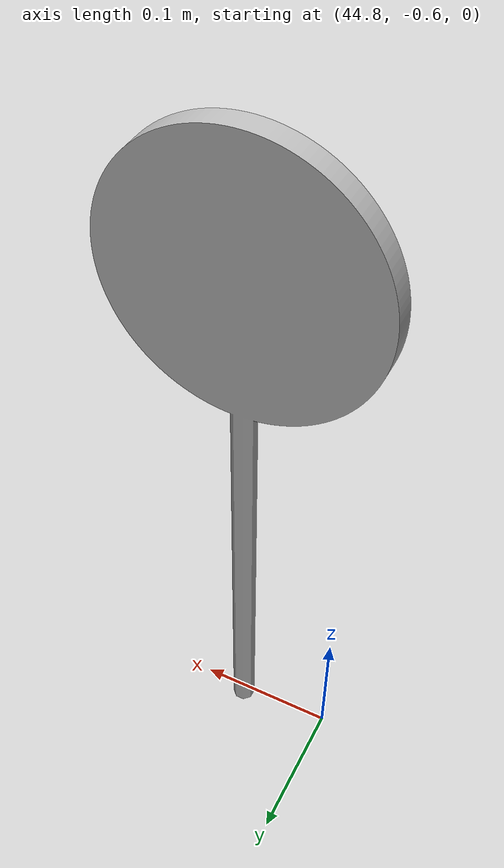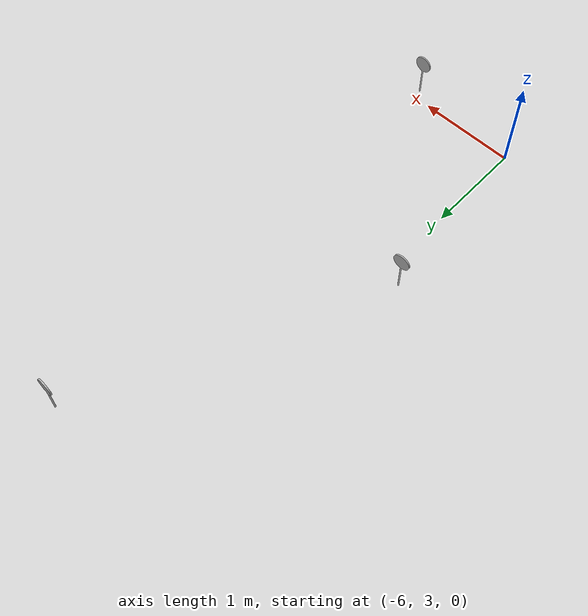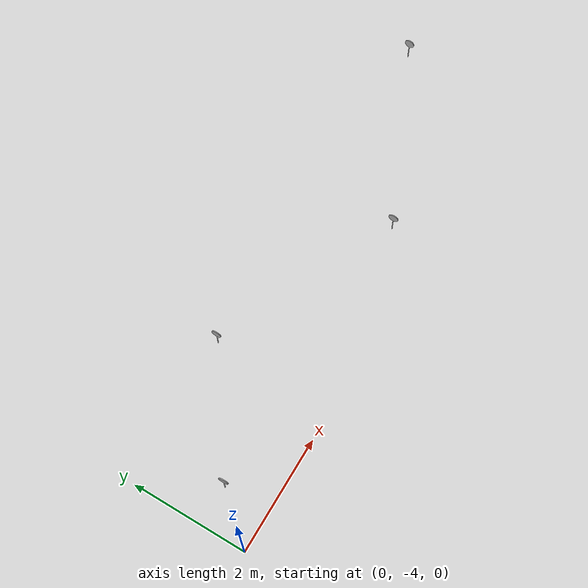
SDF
<sdf version="1.6">
 <world name="default">
  <light name="sun" type="directional">
   <pose>0 0 10 0 -0 0</pose>
   <diffuse>0.8 0.8 0.8 1</diffuse>
   <specular>0.2 0.2 0.2 1</specular>
   <attenuation>
    <range>1000</range>
    <constant>0.9</constant>
    <linear>0.01</linear>
    <quadratic>0.001</quadratic>
   </attenuation>
   <direction>-0.5 0.1 -0.9</direction>
  </light>
  <model name="my_ground_plane">
   <static>1</static>
   <link name="link">
    <collision name="collision">
     <geometry><plane><normal>0 0 1</normal><size>100 100</size></plane></geometry>
     <surface><friction><ode><mu>100</mu><mu2>50</mu2></ode></friction></surface>
    </collision>
    <visual name="visual">
     <cast_shadows>0</cast_shadows>
     <geometry><plane><normal>0 0 1</normal><size>100 100</size></plane></geometry>
     <material>
      <script>
       <uri>model://my_ground_plane/materials/scripts</uri>
       <uri>model://my_ground_plane/materials/textures/</uri>
       <name>MyGroundPlane/Ground</name>
      </script>
     </material>
    </visual>
   </link>
  </model>
  <gravity>0 0 -9.8</gravity>
  <magnetic_field>6e-06 2.3e-05 -4.2e-05</magnetic_field>
  <atmosphere type="adiabatic"/>
  <physics name="default_physics" default="0" type="ode">
   <max_step_size>0.001</max_step_size>
   <real_time_factor>1</real_time_factor>
   <real_time_update_rate>1000</real_time_update_rate>
  </physics>
  <scene><ambient>0.4 0.4 0.4 1</ambient><background>0.7 0.7 0.7 1</background><shadows>1</shadows></scene>
  <audio><device>default</device></audio>
  <spherical_coordinates>
   <surface_model>EARTH_WGS84</surface_model>
   <latitude_deg>0</latitude_deg>
   <longitude_deg>0</longitude_deg>
   <elevation>0</elevation>
   <heading_deg>0</heading_deg>
  </spherical_coordinates>
  <model name="left_arrow">
   <pose>0.690107 -3.21764 0.4 1.5708 4e-06 -1.54391</pose>
   <static>1</static>
   <link name="link">
    <inertial>
     <mass>1</mass>
     <inertia><ixx>0.083</ixx><ixy>0</ixy><ixz>0</ixz><iyy>0.083</iyy><iyz>0</iyz><izz>0.083</izz></inertia>
    </inertial>
    <collision name="collision">
     <geometry>
      <mesh><uri>model://left_arrow/meshes/sign.dae</uri><scale>0.005 0.005 0.005</scale></mesh>
     </geometry>
    </collision>
    <visual name="visual">
     <geometry>
      <mesh><uri>model://left_arrow/meshes/sign.dae</uri><scale>0.005 0.005 0.005</scale></mesh>
     </geometry>
     <material>
      <script>
       <uri>model://left_arrow/materials/scripts</uri>
       <uri>model://left_arrow/materials/textures</uri>
       <name>left_arrow_mat</name>
      </script>
     </material>
    </visual>
   </link>
  </model>
  <model name="right_arrow">
   <pose>28.2949 -12.2665 0.400006 1.5708 4e-06 -1.58024</pose>
   <static>1</static>
   <link name="link">
    <inertial>
     <mass>1</mass>
     <inertia><ixx>0.083</ixx><ixy>0</ixy><ixz>0</ixz><iyy>0.083</iyy><iyz>0</iyz><izz>0.083</izz></inertia>
    </inertial>
    <collision name="collision">
     <geometry>
      <mesh><uri>model://right_arrow/meshes/sign.dae</uri><scale>-0.005 0.005 0.005</scale></mesh>
     </geometry>
    </collision>
    <visual name="visual">
     <geometry>
      <mesh><uri>model://right_arrow/meshes/sign.dae</uri><scale>-0.005 0.005 0.005</scale></mesh>
     </geometry>
     <material>
      <script>
       <uri>model://right_arrow/materials/scripts</uri>
       <uri>model://right_arrow/materials/textures</uri>
       <name>left_arrow_mat</name>
      </script>
     </material>
    </visual>
   </link>
  </model>
  <model name="up_arrow">
   <pose>5.86114 -3.27786 0.4 1.5708 4e-06 -1.56312</pose>
   <static>1</static>
   <link name="link">
    <inertial>
     <mass>1</mass>
     <inertia><ixx>0.083</ixx><ixy>0</ixy><ixz>0</ixz><iyy>0.083</iyy><iyz>0</iyz><izz>0.083</izz></inertia>
    </inertial>
    <collision name="collision">
     <geometry><mesh><uri>model://up_arrow/meshes/sign.dae</uri><scale>-0.005 0.005 0.005</scale></mesh></geometry>
    </collision>
    <visual name="visual">
     <geometry><mesh><uri>model://up_arrow/meshes/sign.dae</uri><scale>-0.005 0.005 0.005</scale></mesh></geometry>
     <material>
      <script>
       <uri>model://up_arrow/materials/scripts</uri>
       <uri>model://up_arrow/materials/textures</uri>
       <name>up_arrow_mat</name>
      </script>
     </material>
    </visual>
   </link>
  </model>
  <model name="right_arrow_0">
   <pose>8.33799 12.8618 0.4 1.5708 -4e-06 1.56153</pose>
   <static>1</static>
   <link name="link">
    <inertial>
     <mass>1</mass>
     <inertia><ixx>0.083</ixx><ixy>0</ixy><ixz>0</ixz><iyy>0.083</iyy><iyz>0</iyz><izz>0.083</izz></inertia>
    </inertial>
    <collision name="collision">
     <geometry>
      <mesh><uri>model://right_arrow/meshes/sign.dae</uri><scale>-0.005 0.005 0.005</scale></mesh>
     </geometry>
    </collision>
    <visual name="visual">
     <geometry>
      <mesh><uri>model://right_arrow/meshes/sign.dae</uri><scale>-0.005 0.005 0.005</scale></mesh>
     </geometry>
     <material>
      <script>
       <uri>model://right_arrow/materials/scripts</uri>
       <uri>model://right_arrow/materials/textures</uri>
       <name>left_arrow_mat</name>
      </script>
     </material>
    </visual>
   </link>
  </model>
  <model name="left_arrow_0">
   <pose>1.15826 12.8557 0.4 1.5708 -4e-06 1.53834</pose>
   <static>1</static>
   <link name="link">
    <inertial>
     <mass>1</mass>
     <inertia><ixx>0.083</ixx><ixy>0</ixy><ixz>0</ixz><iyy>0.083</iyy><iyz>0</iyz><izz>0.083</izz></inertia>
    </inertial>
    <collision name="collision">
     <geometry>
      <mesh><uri>model://left_arrow/meshes/sign.dae</uri><scale>0.005 0.005 0.005</scale></mesh>
     </geometry>
    </collision>
    <visual name="visual">
     <geometry>
      <mesh><uri>model://left_arrow/meshes/sign.dae</uri><scale>0.005 0.005 0.005</scale></mesh>
     </geometry>
     <material>
      <script>
       <uri>model://left_arrow/materials/scripts</uri>
       <uri>model://left_arrow/materials/textures</uri>
       <name>left_arrow_mat</name>
      </script>
     </material>
    </visual>
   </link>
  </model>
  <model name="up_arrow_0">
   <pose>-6.18288 4.83953 0.4 1.57079 -0 -3.12906</pose>
   <static>1</static>
   <link name="link">
    <inertial>
     <mass>1</mass>
     <inertia><ixx>0.083</ixx><ixy>0</ixy><ixz>0</ixz><iyy>0.083</iyy><iyz>0</iyz><izz>0.083</izz></inertia>
    </inertial>
    <collision name="collision">
     <geometry><mesh><uri>model://up_arrow/meshes/sign.dae</uri><scale>-0.005 0.005 0.005</scale></mesh></geometry>
    </collision>
    <visual name="visual">
     <geometry><mesh><uri>model://up_arrow/meshes/sign.dae</uri><scale>-0.005 0.005 0.005</scale></mesh></geometry>
     <material>
      <script>
       <uri>model://up_arrow/materials/scripts</uri>
       <uri>model://up_arrow/materials/textures</uri>
       <name>up_arrow_mat</name>
      </script>
     </material>
    </visual>
   </link>
  </model>
  <model name="right_arrow_0_clone">
   <pose>34.8683 12.7812 0.399972 1.5708 -4e-06 1.56153</pose>
   <static>1</static>
   <link name="link">
    <inertial>
     <mass>1</mass>
     <inertia><ixx>0.083</ixx><ixy>0</ixy><ixz>0</ixz><iyy>0.083</iyy><iyz>0</iyz><izz>0.083</izz></inertia>
    </inertial>
    <collision name="collision">
     <geometry>
      <mesh><uri>model://right_arrow/meshes/sign.dae</uri><scale>-0.005 0.005 0.005</scale></mesh>
     </geometry>
    </collision>
    <visual name="visual">
     <geometry>
      <mesh><uri>model://right_arrow/meshes/sign.dae</uri><scale>-0.005 0.005 0.005</scale></mesh>
     </geometry>
     <material>
      <script>
       <uri>model://right_arrow/materials/scripts</uri>
       <uri>model://right_arrow/materials/textures</uri>
       <name>left_arrow_mat</name>
      </script>
     </material>
    </visual>
   </link>
  </model>
  <model name="left_arrow_0_clone">
   <pose>40.1575 14.1595 0.4 1.5708 -4e-06 1.53834</pose>
   <static>1</static>
   <link name="link">
    <inertial>
     <mass>1</mass>
     <inertia><ixx>0.083</ixx><ixy>0</ixy><ixz>0</ixz><iyy>0.083</iyy><iyz>0</iyz><izz>0.083</izz></inertia>
    </inertial>
    <collision name="collision">
     <geometry>
      <mesh><uri>model://left_arrow/meshes/sign.dae</uri><scale>0.005 0.005 0.005</scale></mesh>
     </geometry>
    </collision>
    <visual name="visual">
     <geometry>
      <mesh><uri>model://left_arrow/meshes/sign.dae</uri><scale>0.005 0.005 0.005</scale></mesh>
     </geometry>
     <material>
      <script>
       <uri>model://left_arrow/materials/scripts</uri>
       <uri>model://left_arrow/materials/textures</uri>
       <name>left_arrow_mat</name>
      </script>
     </material>
    </visual>
   </link>
  </model>
  <model name="up_arrow_1">
   <pose>22.3986 14.1309 0.4 1.5708 -4e-06 1.58526</pose>
   <static>1</static>
   <link name="link">
    <inertial>
     <mass>1</mass>
     <inertia><ixx>0.083</ixx><ixy>0</ixy><ixz>0</ixz><iyy>0.083</iyy><iyz>0</iyz><izz>0.083</izz></inertia>
    </inertial>
    <collision name="collision">
     <geometry><mesh><uri>model://up_arrow/meshes/sign.dae</uri><scale>-0.005 0.005 0.005</scale></mesh></geometry>
    </collision>
    <visual name="visual">
     <geometry><mesh><uri>model://up_arrow/meshes/sign.dae</uri><scale>-0.005 0.005 0.005</scale></mesh></geometry>
     <material>
      <script>
       <uri>model://up_arrow/materials/scripts</uri>
       <uri>model://up_arrow/materials/textures</uri>
       <name>up_arrow_mat</name>
      </script>
     </material>
    </visual>
   </link>
  </model>
  <model name="right_arrow_1">
   <pose>44.8801 -7.19866 0.4 1.5708 -0 0</pose>
   <static>1</static>
   <link name="link">
    <inertial>
     <mass>1</mass>
     <inertia><ixx>0.083</ixx><ixy>0</ixy><ixz>0</ixz><iyy>0.083</iyy><iyz>0</iyz><izz>0.083</izz></inertia>
    </inertial>
    <collision name="collision">
     <geometry>
      <mesh><uri>model://right_arrow/meshes/sign.dae</uri><scale>-0.005 0.005 0.005</scale></mesh>
     </geometry>
    </collision>
    <visual name="visual">
     <geometry>
      <mesh><uri>model://right_arrow/meshes/sign.dae</uri><scale>-0.005 0.005 0.005</scale></mesh>
     </geometry>
     <material>
      <script>
       <uri>model://right_arrow/materials/scripts</uri>
       <uri>model://right_arrow/materials/textures</uri>
       <name>left_arrow_mat</name>
      </script>
     </material>
    </visual>
   </link>
  </model>
  <model name="left_arrow_1">
   <pose>46.1611 5.12155 0.4 1.5708 -0 0</pose>
   <static>1</static>
   <link name="link">
    <inertial>
     <mass>1</mass>
     <inertia><ixx>0.083</ixx><ixy>0</ixy><ixz>0</ixz><iyy>0.083</iyy><iyz>0</iyz><izz>0.083</izz></inertia>
    </inertial>
    <collision name="collision">
     <geometry>
      <mesh><uri>model://left_arrow/meshes/sign.dae</uri><scale>0.005 0.005 0.005</scale></mesh>
     </geometry>
    </collision>
    <visual name="visual">
     <geometry>
      <mesh><uri>model://left_arrow/meshes/sign.dae</uri><scale>0.005 0.005 0.005</scale></mesh>
     </geometry>
     <material>
      <script>
       <uri>model://left_arrow/materials/scripts</uri>
       <uri>model://left_arrow/materials/textures</uri>
       <name>left_arrow_mat</name>
      </script>
     </material>
    </visual>
   </link>
  </model>
  <model name="up_arrow_2">
   <pose>37.0111 -13.6622 0.4 1.5708 4e-06 -1.56784</pose>
   <static>1</static>
   <link name="link">
    <inertial>
     <mass>1</mass>
     <inertia><ixx>0.083</ixx><ixy>0</ixy><ixz>0</ixz><iyy>0.083</iyy><iyz>0</iyz><izz>0.083</izz></inertia>
    </inertial>
    <collision name="collision">
     <geometry><mesh><uri>model://up_arrow/meshes/sign.dae</uri><scale>-0.005 0.005 0.005</scale></mesh></geometry>
    </collision>
    <visual name="visual">
     <geometry><mesh><uri>model://up_arrow/meshes/sign.dae</uri><scale>-0.005 0.005 0.005</scale></mesh></geometry>
     <material>
      <script>
       <uri>model://up_arrow/materials/scripts</uri>
       <uri>model://up_arrow/materials/textures</uri>
       <name>up_arrow_mat</name>
      </script>
     </material>
    </visual>
   </link>
  </model>
  <model name="smiley">
   <pose>15.6654 5.47511 0.4 1.5708 -0 0</pose>
   <static>1</static>
   <link name="link">
    <inertial>
     <mass>1</mass>
     <inertia><ixx>0.083</ixx><ixy>0</ixy><ixz>0</ixz><iyy>0.083</iyy><iyz>0</iyz><izz>0.083</izz></inertia>
    </inertial>
    <collision name="collision">
     <geometry><mesh><uri>model://smiley/meshes/sign.dae</uri><scale>-0.005 0.005 0.005</scale></mesh></geometry>
    </collision>
    <visual name="visual">
     <geometry><mesh><uri>model://smiley/meshes/sign.dae</uri><scale>-0.005 0.005 0.005</scale></mesh></geometry>
     <material>
      <script>
       <uri>model://smiley/materials/scripts</uri>
       <uri>model://smiley/materials/textures</uri>
       <name>smiley_mat</name>
      </script>
     </material>
    </visual>
   </link>
  </model>
  <model name="smiley_0">
   <pose>17.6688 -1.1942 0.4 1.57079 -0 3.09188</pose>
   <static>1</static>
   <link name="link">
    <inertial>
     <mass>1</mass>
     <inertia><ixx>0.083</ixx><ixy>0</ixy><ixz>0</ixz><iyy>0.083</iyy><iyz>0</iyz><izz>0.083</izz></inertia>
    </inertial>
    <collision name="collision">
     <geometry><mesh><uri>model://smiley/meshes/sign.dae</uri><scale>-0.005 0.005 0.005</scale></mesh></geometry>
    </collision>
    <visual name="visual">
     <geometry><mesh><uri>model://smiley/meshes/sign.dae</uri><scale>-0.005 0.005 0.005</scale></mesh></geometry>
     <material>
      <script>
       <uri>model://smiley/materials/scripts</uri>
       <uri>model://smiley/materials/textures</uri>
       <name>smiley_mat</name>
      </script>
     </material>
    </visual>
   </link>
  </model>
  <model name="square">
   <pose>17.6612 6.69733 0.4 1.57079 -0 3.12146</pose>
   <static>1</static>
   <link name="link">
    <inertial>
     <mass>1</mass>
     <inertia><ixx>0.083</ixx><ixy>0</ixy><ixz>0</ixz><iyy>0.083</iyy><iyz>0</iyz><izz>0.083</izz></inertia>
    </inertial>
    <collision name="collision">
     <geometry><mesh><uri>model://square/meshes/sign.dae</uri><scale>-0.005 0.005 0.005</scale></mesh></geometry>
    </collision>
    <visual name="visual">
     <geometry><mesh><uri>model://square/meshes/sign.dae</uri><scale>-0.005 0.005 0.005</scale></mesh></geometry>
     <material>
      <script>
       <uri>model://square/materials/scripts</uri>
       <uri>model://square/materials/textures</uri>
       <name>square_mat</name>
      </script>
     </material>
    </visual>
   </link>
  </model>
  <model name="triangle">
   <pose>25.1903 -13.6854 0.4 1.5708 4e-06 -1.55552</pose>
   <static>1</static>
   <link name="link">
    <inertial>
     <mass>1</mass>
     <inertia><ixx>0.083</ixx><ixy>0</ixy><ixz>0</ixz><iyy>0.083</iyy><iyz>0</iyz><izz>0.083</izz></inertia>
    </inertial>
    <collision name="collision">
     <geometry><mesh><uri>model://triangle/meshes/sign.dae</uri><scale>-0.005 0.005 0.005</scale></mesh></geometry>
    </collision>
    <visual name="visual">
     <geometry><mesh><uri>model://triangle/meshes/sign.dae</uri><scale>-0.005 0.005 0.005</scale></mesh></geometry>
     <material>
      <script>
       <uri>model://triangle/materials/scripts</uri>
       <uri>model://triangle/materials/textures</uri>
       <name>triangle_mat</name>
      </script>
     </material>
    </visual>
   </link>
  </model>
  <model name="smiley_1">
   <pose>36.7777 -12.3215 0.4 1.5708 4e-06 -1.54762</pose>
   <static>1</static>
   <link name="link">
    <inertial>
     <mass>1</mass>
     <inertia><ixx>0.083</ixx><ixy>0</ixy><ixz>0</ixz><iyy>0.083</iyy><iyz>0</iyz><izz>0.083</izz></inertia>
    </inertial>
    <collision name="collision">
     <geometry><mesh><uri>model://smiley/meshes/sign.dae</uri><scale>-0.005 0.005 0.005</scale></mesh></geometry>
    </collision>
    <visual name="visual">
     <geometry><mesh><uri>model://smiley/meshes/sign.dae</uri><scale>-0.005 0.005 0.005</scale></mesh></geometry>
     <material>
      <script>
       <uri>model://smiley/materials/scripts</uri>
       <uri>model://smiley/materials/textures</uri>
       <name>smiley_mat</name>
      </script>
     </material>
    </visual>
   </link>
  </model>
  <model name="square_0">
   <pose>44.8655 -0.585028 0.4 1.5708 -0 0</pose>
   <static>1</static>
   <link name="link">
    <inertial>
     <mass>1</mass>
     <inertia><ixx>0.083</ixx><ixy>0</ixy><ixz>0</ixz><iyy>0.083</iyy><iyz>0</iyz><izz>0.083</izz></inertia>
    </inertial>
    <collision name="collision">
     <geometry><mesh><uri>model://square/meshes/sign.dae</uri><scale>-0.005 0.005 0.005</scale></mesh></geometry>
    </collision>
    <visual name="visual">
     <geometry><mesh><uri>model://square/meshes/sign.dae</uri><scale>-0.005 0.005 0.005</scale></mesh></geometry>
     <material>
      <script>
       <uri>model://square/materials/scripts</uri>
       <uri>model://square/materials/textures</uri>
       <name>square_mat</name>
      </script>
     </material>
    </visual>
   </link>
  </model>
  <model name="triangle_0">
   <pose>44.8544 5.18401 0.4 1.5708 -0 0</pose>
   <static>1</static>
   <link name="link">
    <inertial>
     <mass>1</mass>
     <inertia><ixx>0.083</ixx><ixy>0</ixy><ixz>0</ixz><iyy>0.083</iyy><iyz>0</iyz><izz>0.083</izz></inertia>
    </inertial>
    <collision name="collision">
     <geometry><mesh><uri>model://triangle/meshes/sign.dae</uri><scale>-0.005 0.005 0.005</scale></mesh></geometry>
    </collision>
    <visual name="visual">
     <geometry><mesh><uri>model://triangle/meshes/sign.dae</uri><scale>-0.005 0.005 0.005</scale></mesh></geometry>
     <material>
      <script>
       <uri>model://triangle/materials/scripts</uri>
       <uri>model://triangle/materials/textures</uri>
       <name>triangle_mat</name>
      </script>
     </material>
    </visual>
   </link>
  </model>
  <model name="smiley_2">
   <pose>32.3344 14.1713 0.4 1.5708 -4e-06 1.56569</pose>
   <static>1</static>
   <link name="link">
    <inertial>
     <mass>1</mass>
     <inertia><ixx>0.083</ixx><ixy>0</ixy><ixz>0</ixz><iyy>0.083</iyy><iyz>0</iyz><izz>0.083</izz></inertia>
    </inertial>
    <collision name="collision">
     <geometry><mesh><uri>model://smiley/meshes/sign.dae</uri><scale>-0.005 0.005 0.005</scale></mesh></geometry>
    </collision>
    <visual name="visual">
     <geometry><mesh><uri>model://smiley/meshes/sign.dae</uri><scale>-0.005 0.005 0.005</scale></mesh></geometry>
     <material>
      <script>
       <uri>model://smiley/materials/scripts</uri>
       <uri>model://smiley/materials/textures</uri>
       <name>smiley_mat</name>
      </script>
     </material>
    </visual>
   </link>
  </model>
  <model name="square_1">
   <pose>26.6206 12.8164 0.4 1.5708 -4e-06 1.55738</pose>
   <static>1</static>
   <link name="link">
    <inertial>
     <mass>1</mass>
     <inertia><ixx>0.083</ixx><ixy>0</ixy><ixz>0</ixz><iyy>0.083</iyy><iyz>0</iyz><izz>0.083</izz></inertia>
    </inertial>
    <collision name="collision">
     <geometry><mesh><uri>model://square/meshes/sign.dae</uri><scale>-0.005 0.005 0.005</scale></mesh></geometry>
    </collision>
    <visual name="visual">
     <geometry><mesh><uri>model://square/meshes/sign.dae</uri><scale>-0.005 0.005 0.005</scale></mesh></geometry>
     <material>
      <script>
       <uri>model://square/materials/scripts</uri>
       <uri>model://square/materials/textures</uri>
       <name>square_mat</name>
      </script>
     </material>
    </visual>
   </link>
  </model>
  <model name="square_2">
   <pose>8.33967 14.1675 1.87068 1.5708 -4e-06 1.57783</pose>
   <static>1</static>
   <link name="link">
    <inertial>
     <mass>1</mass>
     <inertia><ixx>0.083</ixx><ixy>0</ixy><ixz>0</ixz><iyy>0.083</iyy><iyz>0</iyz><izz>0.083</izz></inertia>
    </inertial>
    <collision name="collision">
     <geometry><mesh><uri>model://square/meshes/sign.dae</uri><scale>-0.005 0.005 0.005</scale></mesh></geometry>
    </collision>
    <visual name="visual">
     <geometry><mesh><uri>model://square/meshes/sign.dae</uri><scale>-0.005 0.005 0.005</scale></mesh></geometry>
     <material>
      <script>
       <uri>model://square/materials/scripts</uri>
       <uri>model://square/materials/textures</uri>
       <name>square_mat</name>
      </script>
     </material>
    </visual>
   </link>
  </model>
  <model name="triangle_1">
   <pose>2.35989 14.1757 0.4 1.5708 -4e-06 1.58074</pose>
   <static>1</static>
   <link name="link">
    <inertial>
     <mass>1</mass>
     <inertia><ixx>0.083</ixx><ixy>0</ixy><ixz>0</ixz><iyy>0.083</iyy><iyz>0</iyz><izz>0.083</izz></inertia>
    </inertial>
    <collision name="collision">
     <geometry><mesh><uri>model://triangle/meshes/sign.dae</uri><scale>-0.005 0.005 0.005</scale></mesh></geometry>
    </collision>
    <visual name="visual">
     <geometry><mesh><uri>model://triangle/meshes/sign.dae</uri><scale>-0.005 0.005 0.005</scale></mesh></geometry>
     <material>
      <script>
       <uri>model://triangle/materials/scripts</uri>
       <uri>model://triangle/materials/textures</uri>
       <name>triangle_mat</name>
      </script>
     </material>
    </visual>
   </link>
  </model>
  <model name="smiley_3">
   <pose>-4.84541 7.76753 0.4 1.57079 -0 3.10049</pose>
   <static>1</static>
   <link name="link">
    <inertial>
     <mass>1</mass>
     <inertia><ixx>0.083</ixx><ixy>0</ixy><ixz>0</ixz><iyy>0.083</iyy><iyz>0</iyz><izz>0.083</izz></inertia>
    </inertial>
    <collision name="collision">
     <geometry><mesh><uri>model://smiley/meshes/sign.dae</uri><scale>-0.005 0.005 0.005</scale></mesh></geometry>
    </collision>
    <visual name="visual">
     <geometry><mesh><uri>model://smiley/meshes/sign.dae</uri><scale>-0.005 0.005 0.005</scale></mesh></geometry>
     <material>
      <script>
       <uri>model://smiley/materials/scripts</uri>
       <uri>model://smiley/materials/textures</uri>
       <name>smiley_mat</name>
      </script>
     </material>
    </visual>
   </link>
  </model>
  <model name="square_3">
   <pose>-4.80887 2.89364 0.4 1.57079 -0 3.11851</pose>
   <static>1</static>
   <link name="link">
    <inertial>
     <mass>1</mass>
     <inertia><ixx>0.083</ixx><ixy>0</ixy><ixz>0</ixz><iyy>0.083</iyy><iyz>0</iyz><izz>0.083</izz></inertia>
    </inertial>
    <collision name="collision">
     <geometry><mesh><uri>model://square/meshes/sign.dae</uri><scale>-0.005 0.005 0.005</scale></mesh></geometry>
    </collision>
    <visual name="visual">
     <geometry><mesh><uri>model://square/meshes/sign.dae</uri><scale>-0.005 0.005 0.005</scale></mesh></geometry>
     <material>
      <script>
       <uri>model://square/materials/scripts</uri>
       <uri>model://square/materials/textures</uri>
       <name>square_mat</name>
      </script>
     </material>
    </visual>
   </link>
  </model>
  <model name="triangle_2">
   <pose>2.62589 -1.85485 0.4 1.5708 4e-06 -1.57781</pose>
   <static>1</static>
   <link name="link">
    <inertial>
     <mass>1</mass>
     <inertia><ixx>0.083</ixx><ixy>0</ixy><ixz>0</ixz><iyy>0.083</iyy><iyz>0</iyz><izz>0.083</izz></inertia>
    </inertial>
    <collision name="collision">
     <geometry><mesh><uri>model://triangle/meshes/sign.dae</uri><scale>-0.005 0.005 0.005</scale></mesh></geometry>
    </collision>
    <visual name="visual">
     <geometry><mesh><uri>model://triangle/meshes/sign.dae</uri><scale>-0.005 0.005 0.005</scale></mesh></geometry>
     <material>
      <script>
       <uri>model://triangle/materials/scripts</uri>
       <uri>model://triangle/materials/textures</uri>
       <name>triangle_mat</name>
      </script>
     </material>
    </visual>
   </link>
  </model>
  <model name="smiley_4">
   <pose>9.0536 -1.83953 0.4 1.5708 4e-06 -1.60114</pose>
   <static>1</static>
   <link name="link">
    <inertial>
     <mass>1</mass>
     <inertia><ixx>0.083</ixx><ixy>0</ixy><ixz>0</ixz><iyy>0.083</iyy><iyz>0</iyz><izz>0.083</izz></inertia>
    </inertial>
    <collision name="collision">
     <geometry><mesh><uri>model://smiley/meshes/sign.dae</uri><scale>-0.005 0.005 0.005</scale></mesh></geometry>
    </collision>
    <visual name="visual">
     <geometry><mesh><uri>model://smiley/meshes/sign.dae</uri><scale>-0.005 0.005 0.005</scale></mesh></geometry>
     <material>
      <script>
       <uri>model://smiley/materials/scripts</uri>
       <uri>model://smiley/materials/textures</uri>
       <name>smiley_mat</name>
      </script>
     </material>
    </visual>
   </link>
  </model>
  <model name="smiley_5">
   <pose>13.1181 -4.48844 0.4 1.57079 2e-06 -2.41407</pose>
   <static>1</static>
   <link name="link">
    <inertial>
     <mass>1</mass>
     <inertia><ixx>0.083</ixx><ixy>0</ixy><ixz>0</ixz><iyy>0.083</iyy><iyz>0</iyz><izz>0.083</izz></inertia>
    </inertial>
    <collision name="collision">
     <geometry><mesh><uri>model://smiley/meshes/sign.dae</uri><scale>-0.005 0.005 0.005</scale></mesh></geometry>
    </collision>
    <visual name="visual">
     <geometry><mesh><uri>model://smiley/meshes/sign.dae</uri><scale>-0.005 0.005 0.005</scale></mesh></geometry>
     <material>
      <script>
       <uri>model://smiley/materials/scripts</uri>
       <uri>model://smiley/materials/textures</uri>
       <name>smiley_mat</name>
      </script>
     </material>
    </visual>
   </link>
  </model>
  <model name="square_4">
   <pose>17.3782 -12.679 0.4 1.57079 3e-06 -2.03422</pose>
   <static>1</static>
   <link name="link">
    <inertial>
     <mass>1</mass>
     <inertia><ixx>0.083</ixx><ixy>0</ixy><ixz>0</ixz><iyy>0.083</iyy><iyz>0</iyz><izz>0.083</izz></inertia>
    </inertial>
    <collision name="collision">
     <geometry><mesh><uri>model://square/meshes/sign.dae</uri><scale>-0.005 0.005 0.005</scale></mesh></geometry>
    </collision>
    <visual name="visual">
     <geometry><mesh><uri>model://square/meshes/sign.dae</uri><scale>-0.005 0.005 0.005</scale></mesh></geometry>
     <material>
      <script>
       <uri>model://square/materials/scripts</uri>
       <uri>model://square/materials/textures</uri>
       <name>square_mat</name>
      </script>
     </material>
    </visual>
   </link>
  </model>
  <model name="triangle_3">
   <pose>16.824 -4.76666 0.4 1.57079 -0 3.07746</pose>
   <static>1</static>
   <link name="link">
    <inertial>
     <mass>1</mass>
     <inertia><ixx>0.083</ixx><ixy>0</ixy><ixz>0</ixz><iyy>0.083</iyy><iyz>0</iyz><izz>0.083</izz></inertia>
    </inertial>
    <collision name="collision">
     <geometry><mesh><uri>model://triangle/meshes/sign.dae</uri><scale>-0.005 0.005 0.005</scale></mesh></geometry>
    </collision>
    <visual name="visual">
     <geometry><mesh><uri>model://triangle/meshes/sign.dae</uri><scale>-0.005 0.005 0.005</scale></mesh></geometry>
     <material>
      <script>
       <uri>model://triangle/materials/scripts</uri>
       <uri>model://triangle/materials/textures</uri>
       <name>triangle_mat</name>
      </script>
     </material>
    </visual>
   </link>
  </model>
 </world>
</sdf>
